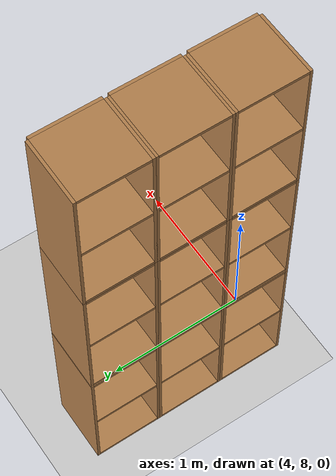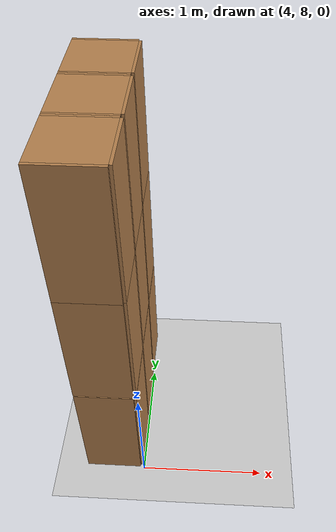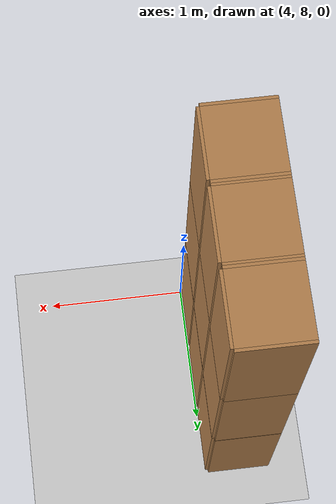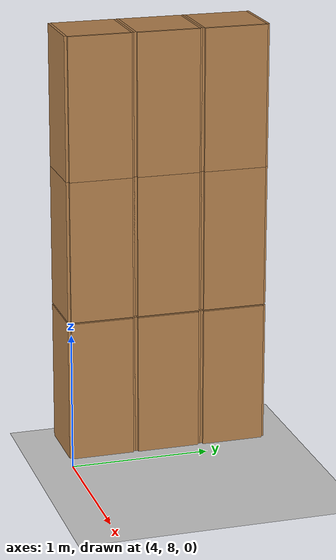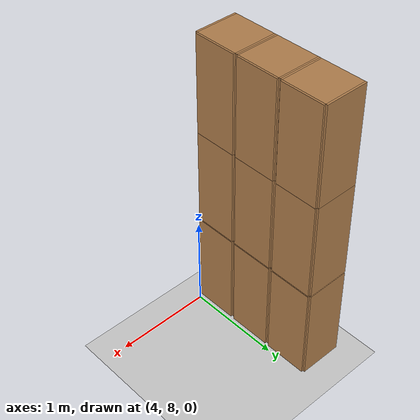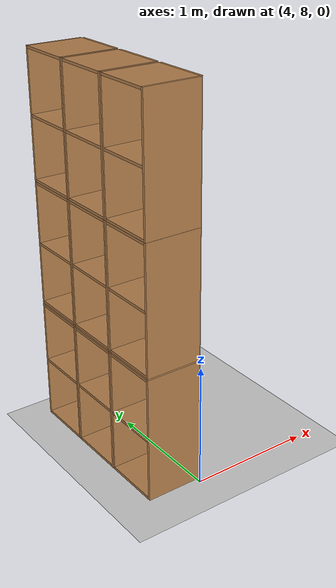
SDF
<sdf version="1.6">
 <world name="default">
  <model name="ground_plane">
   <static>1</static>
   <link name="link">
    <collision name="collision">
     <geometry><plane><normal>0 0 1</normal><size>100 100</size></plane></geometry>
     <surface>
      <contact><collide_bitmask>65535</collide_bitmask></contact>
      <friction><ode><mu>100</mu><mu2>50</mu2></ode></friction>
     </surface>
    </collision>
    <visual name="visual">
     <cast_shadows>0</cast_shadows>
     <geometry><plane><normal>0 0 1</normal><size>100 100</size></plane></geometry>
     <material>
      <script><uri>file://media/materials/scripts/gazebo.material</uri><name>Gazebo/Grey</name></script>
     </material>
    </visual>
   </link>
  </model>
  <model name="Locker18_clone_4">
   <model name="Locker18">
    <model name="Locker3">
     <model name="cabinet">
      <static>1</static>
      <link name="cabinet_bottom_plate">
       <inertial>
        <pose>0 0 -1 0 -0 0</pose>
        <inertia><ixx>2.05</ixx><ixy>0</ixy><ixz>0</ixz><iyy>2.05</iyy><iyz>0</iyz><izz>2.05</izz></inertia>
        <mass>25</mass>
       </inertial>
       <collision name="cabinet_bottom_plate_geom">
        <pose>0 0 0.01 0 -0 0</pose>
        <geometry><box><size>0.45 0.45 0.02</size></box></geometry>
       </collision>
       <visual name="cabinet_bottom_plate_geom_visual">
        <pose>0 0 0.01 0 -0 0</pose>
        <geometry><box><size>0.45 0.45 0.02</size></box></geometry>
        <material>
         <script><uri>file://media/materials/scripts/gazebo.material</uri><name>Gazebo/Wood</name></script>
        </material>
       </visual>
       <collision name="cabinet_bottom_plate_geom_cabinet_back_plate">
        <pose>0.235 0 0.51 0 -0 0</pose>
        <geometry><box><size>0.02 0.45 1.02</size></box></geometry>
       </collision>
       <visual name="cabinet_bottom_plate_geom_cabinet_back_plate_visual">
        <pose>0.235 0 0.51 0 -0 0</pose>
        <geometry><box><size>0.02 0.45 1.02</size></box></geometry>
        <material>
         <script><uri>file://media/materials/scripts/gazebo.material</uri><name>Gazebo/Wood</name></script>
        </material>
       </visual>
       <collision name="cabinet_bottom_plate_geom_cabinet_left_plate">
        <pose>0 0.235 0.51 0 -0 0</pose>
        <geometry><box><size>0.45 0.02 1.02</size></box></geometry>
       </collision>
       <visual name="cabinet_bottom_plate_geom_cabinet_left_plate_visual">
        <pose>0 0.235 0.51 0 -0 0</pose>
        <geometry><box><size>0.45 0.02 1.02</size></box></geometry>
        <material>
         <script><uri>file://media/materials/scripts/gazebo.material</uri><name>Gazebo/Wood</name></script>
        </material>
       </visual>
       <collision name="cabinet_bottom_plate_geom_cabinet_middle_plate">
        <pose>0 0 0.51 0 -0 0</pose>
        <geometry><box><size>0.45 0.45 0.02</size></box></geometry>
       </collision>
       <visual name="cabinet_bottom_plate_geom_cabinet_middle_plate_visual">
        <pose>0 0 0.51 0 -0 0</pose>
        <geometry><box><size>0.45 0.45 0.02</size></box></geometry>
        <material>
         <script><uri>file://media/materials/scripts/gazebo.material</uri><name>Gazebo/Wood</name></script>
        </material>
       </visual>
       <collision name="cabinet_bottom_plate_geom_cabinet_right_plate">
        <pose>0 -0.235 0.51 0 -0 0</pose>
        <geometry><box><size>0.45 0.02 1.02</size></box></geometry>
       </collision>
       <visual name="cabinet_bottom_plate_geom_cabinet_right_plate_visual">
        <pose>0 -0.235 0.51 0 -0 0</pose>
        <geometry><box><size>0.45 0.02 1.02</size></box></geometry>
        <material>
         <script><uri>file://media/materials/scripts/gazebo.material</uri><name>Gazebo/Wood</name></script>
        </material>
       </visual>
       <collision name="cabinet_bottom_plate_geom_cabinet_top_plate">
        <pose>0 0 1.01 0 -0 0</pose>
        <geometry><box><size>0.45 0.45 0.02</size></box></geometry>
       </collision>
       <visual name="cabinet_bottom_plate_geom_cabinet_top_plate_visual">
        <pose>0 0 1.01 0 -0 0</pose>
        <geometry><box><size>0.45 0.45 0.02</size></box></geometry>
        <material>
         <script><uri>file://media/materials/scripts/gazebo.material</uri><name>Gazebo/Wood</name></script>
        </material>
       </visual>
      </link>
      <pose>-0.676968 1.45758 0 0 -0 0</pose>
     </model>
     <model name="cabinet_clone">
      <static>1</static>
      <link name="cabinet_bottom_plate">
       <inertial>
        <pose>0 0 -1 0 -0 0</pose>
        <inertia><ixx>2.05</ixx><ixy>0</ixy><ixz>0</ixz><iyy>2.05</iyy><iyz>0</iyz><izz>2.05</izz></inertia>
        <mass>25</mass>
       </inertial>
       <collision name="cabinet_bottom_plate_geom">
        <pose>0 0 0.01 0 -0 0</pose>
        <geometry><box><size>0.45 0.45 0.02</size></box></geometry>
       </collision>
       <visual name="cabinet_bottom_plate_geom_visual">
        <pose>0 0 0.01 0 -0 0</pose>
        <geometry><box><size>0.45 0.45 0.02</size></box></geometry>
        <material>
         <script><uri>file://media/materials/scripts/gazebo.material</uri><name>Gazebo/Wood</name></script>
        </material>
       </visual>
       <collision name="cabinet_bottom_plate_geom_cabinet_back_plate">
        <pose>0.235 0 0.51 0 -0 0</pose>
        <geometry><box><size>0.02 0.45 1.02</size></box></geometry>
       </collision>
       <visual name="cabinet_bottom_plate_geom_cabinet_back_plate_visual">
        <pose>0.235 0 0.51 0 -0 0</pose>
        <geometry><box><size>0.02 0.45 1.02</size></box></geometry>
        <material>
         <script><uri>file://media/materials/scripts/gazebo.material</uri><name>Gazebo/Wood</name></script>
        </material>
       </visual>
       <collision name="cabinet_bottom_plate_geom_cabinet_left_plate">
        <pose>0 0.235 0.51 0 -0 0</pose>
        <geometry><box><size>0.45 0.02 1.02</size></box></geometry>
       </collision>
       <visual name="cabinet_bottom_plate_geom_cabinet_left_plate_visual">
        <pose>0 0.235 0.51 0 -0 0</pose>
        <geometry><box><size>0.45 0.02 1.02</size></box></geometry>
        <material>
         <script><uri>file://media/materials/scripts/gazebo.material</uri><name>Gazebo/Wood</name></script>
        </material>
       </visual>
       <collision name="cabinet_bottom_plate_geom_cabinet_middle_plate">
        <pose>0 0 0.51 0 -0 0</pose>
        <geometry><box><size>0.45 0.45 0.02</size></box></geometry>
       </collision>
       <visual name="cabinet_bottom_plate_geom_cabinet_middle_plate_visual">
        <pose>0 0 0.51 0 -0 0</pose>
        <geometry><box><size>0.45 0.45 0.02</size></box></geometry>
        <material>
         <script><uri>file://media/materials/scripts/gazebo.material</uri><name>Gazebo/Wood</name></script>
        </material>
       </visual>
       <collision name="cabinet_bottom_plate_geom_cabinet_right_plate">
        <pose>0 -0.235 0.51 0 -0 0</pose>
        <geometry><box><size>0.45 0.02 1.02</size></box></geometry>
       </collision>
       <visual name="cabinet_bottom_plate_geom_cabinet_right_plate_visual">
        <pose>0 -0.235 0.51 0 -0 0</pose>
        <geometry><box><size>0.45 0.02 1.02</size></box></geometry>
        <material>
         <script><uri>file://media/materials/scripts/gazebo.material</uri><name>Gazebo/Wood</name></script>
        </material>
       </visual>
       <collision name="cabinet_bottom_plate_geom_cabinet_top_plate">
        <pose>0 0 1.01 0 -0 0</pose>
        <geometry><box><size>0.45 0.45 0.02</size></box></geometry>
       </collision>
       <visual name="cabinet_bottom_plate_geom_cabinet_top_plate_visual">
        <pose>0 0 1.01 0 -0 0</pose>
        <geometry><box><size>0.45 0.45 0.02</size></box></geometry>
        <material>
         <script><uri>file://media/materials/scripts/gazebo.material</uri><name>Gazebo/Wood</name></script>
        </material>
       </visual>
      </link>
      <pose>-0.676968 0.970971 0 0 -0 0</pose>
     </model>
     <model name="cabinet_clone_0">
      <static>1</static>
      <link name="cabinet_bottom_plate">
       <inertial>
        <pose>0 0 -1 0 -0 0</pose>
        <inertia><ixx>2.05</ixx><ixy>0</ixy><ixz>0</ixz><iyy>2.05</iyy><iyz>0</iyz><izz>2.05</izz></inertia>
        <mass>25</mass>
       </inertial>
       <collision name="cabinet_bottom_plate_geom">
        <pose>0 0 0.01 0 -0 0</pose>
        <geometry><box><size>0.45 0.45 0.02</size></box></geometry>
       </collision>
       <visual name="cabinet_bottom_plate_geom_visual">
        <pose>0 0 0.01 0 -0 0</pose>
        <geometry><box><size>0.45 0.45 0.02</size></box></geometry>
        <material>
         <script><uri>file://media/materials/scripts/gazebo.material</uri><name>Gazebo/Wood</name></script>
        </material>
       </visual>
       <collision name="cabinet_bottom_plate_geom_cabinet_back_plate">
        <pose>0.235 0 0.51 0 -0 0</pose>
        <geometry><box><size>0.02 0.45 1.02</size></box></geometry>
       </collision>
       <visual name="cabinet_bottom_plate_geom_cabinet_back_plate_visual">
        <pose>0.235 0 0.51 0 -0 0</pose>
        <geometry><box><size>0.02 0.45 1.02</size></box></geometry>
        <material>
         <script><uri>file://media/materials/scripts/gazebo.material</uri><name>Gazebo/Wood</name></script>
        </material>
       </visual>
       <collision name="cabinet_bottom_plate_geom_cabinet_left_plate">
        <pose>0 0.235 0.51 0 -0 0</pose>
        <geometry><box><size>0.45 0.02 1.02</size></box></geometry>
       </collision>
       <visual name="cabinet_bottom_plate_geom_cabinet_left_plate_visual">
        <pose>0 0.235 0.51 0 -0 0</pose>
        <geometry><box><size>0.45 0.02 1.02</size></box></geometry>
        <material>
         <script><uri>file://media/materials/scripts/gazebo.material</uri><name>Gazebo/Wood</name></script>
        </material>
       </visual>
       <collision name="cabinet_bottom_plate_geom_cabinet_middle_plate">
        <pose>0 0 0.51 0 -0 0</pose>
        <geometry><box><size>0.45 0.45 0.02</size></box></geometry>
       </collision>
       <visual name="cabinet_bottom_plate_geom_cabinet_middle_plate_visual">
        <pose>0 0 0.51 0 -0 0</pose>
        <geometry><box><size>0.45 0.45 0.02</size></box></geometry>
        <material>
         <script><uri>file://media/materials/scripts/gazebo.material</uri><name>Gazebo/Wood</name></script>
        </material>
       </visual>
       <collision name="cabinet_bottom_plate_geom_cabinet_right_plate">
        <pose>0 -0.235 0.51 0 -0 0</pose>
        <geometry><box><size>0.45 0.02 1.02</size></box></geometry>
       </collision>
       <visual name="cabinet_bottom_plate_geom_cabinet_right_plate_visual">
        <pose>0 -0.235 0.51 0 -0 0</pose>
        <geometry><box><size>0.45 0.02 1.02</size></box></geometry>
        <material>
         <script><uri>file://media/materials/scripts/gazebo.material</uri><name>Gazebo/Wood</name></script>
        </material>
       </visual>
       <collision name="cabinet_bottom_plate_geom_cabinet_top_plate">
        <pose>0 0 1.01 0 -0 0</pose>
        <geometry><box><size>0.45 0.45 0.02</size></box></geometry>
       </collision>
       <visual name="cabinet_bottom_plate_geom_cabinet_top_plate_visual">
        <pose>0 0 1.01 0 -0 0</pose>
        <geometry><box><size>0.45 0.45 0.02</size></box></geometry>
        <material>
         <script><uri>file://media/materials/scripts/gazebo.material</uri><name>Gazebo/Wood</name></script>
        </material>
       </visual>
      </link>
      <pose>-0.676968 0.48391 0 0 -0 0</pose>
     </model>
     <static>0</static>
     <pose>0 3e-06 -1.02763 0 -0 0</pose>
    </model>
    <model name="Locker3_clone">
     <model name="cabinet">
      <static>1</static>
      <link name="cabinet_bottom_plate">
       <inertial>
        <pose>0 0 -1 0 -0 0</pose>
        <inertia><ixx>2.05</ixx><ixy>0</ixy><ixz>0</ixz><iyy>2.05</iyy><iyz>0</iyz><izz>2.05</izz></inertia>
        <mass>25</mass>
       </inertial>
       <collision name="cabinet_bottom_plate_geom">
        <pose>0 0 0.01 0 -0 0</pose>
        <geometry><box><size>0.45 0.45 0.02</size></box></geometry>
       </collision>
       <visual name="cabinet_bottom_plate_geom_visual">
        <pose>0 0 0.01 0 -0 0</pose>
        <geometry><box><size>0.45 0.45 0.02</size></box></geometry>
        <material>
         <script><uri>file://media/materials/scripts/gazebo.material</uri><name>Gazebo/Wood</name></script>
        </material>
       </visual>
       <collision name="cabinet_bottom_plate_geom_cabinet_back_plate">
        <pose>0.235 0 0.51 0 -0 0</pose>
        <geometry><box><size>0.02 0.45 1.02</size></box></geometry>
       </collision>
       <visual name="cabinet_bottom_plate_geom_cabinet_back_plate_visual">
        <pose>0.235 0 0.51 0 -0 0</pose>
        <geometry><box><size>0.02 0.45 1.02</size></box></geometry>
        <material>
         <script><uri>file://media/materials/scripts/gazebo.material</uri><name>Gazebo/Wood</name></script>
        </material>
       </visual>
       <collision name="cabinet_bottom_plate_geom_cabinet_left_plate">
        <pose>0 0.235 0.51 0 -0 0</pose>
        <geometry><box><size>0.45 0.02 1.02</size></box></geometry>
       </collision>
       <visual name="cabinet_bottom_plate_geom_cabinet_left_plate_visual">
        <pose>0 0.235 0.51 0 -0 0</pose>
        <geometry><box><size>0.45 0.02 1.02</size></box></geometry>
        <material>
         <script><uri>file://media/materials/scripts/gazebo.material</uri><name>Gazebo/Wood</name></script>
        </material>
       </visual>
       <collision name="cabinet_bottom_plate_geom_cabinet_middle_plate">
        <pose>0 0 0.51 0 -0 0</pose>
        <geometry><box><size>0.45 0.45 0.02</size></box></geometry>
       </collision>
       <visual name="cabinet_bottom_plate_geom_cabinet_middle_plate_visual">
        <pose>0 0 0.51 0 -0 0</pose>
        <geometry><box><size>0.45 0.45 0.02</size></box></geometry>
        <material>
         <script><uri>file://media/materials/scripts/gazebo.material</uri><name>Gazebo/Wood</name></script>
        </material>
       </visual>
       <collision name="cabinet_bottom_plate_geom_cabinet_right_plate">
        <pose>0 -0.235 0.51 0 -0 0</pose>
        <geometry><box><size>0.45 0.02 1.02</size></box></geometry>
       </collision>
       <visual name="cabinet_bottom_plate_geom_cabinet_right_plate_visual">
        <pose>0 -0.235 0.51 0 -0 0</pose>
        <geometry><box><size>0.45 0.02 1.02</size></box></geometry>
        <material>
         <script><uri>file://media/materials/scripts/gazebo.material</uri><name>Gazebo/Wood</name></script>
        </material>
       </visual>
       <collision name="cabinet_bottom_plate_geom_cabinet_top_plate">
        <pose>0 0 1.01 0 -0 0</pose>
        <geometry><box><size>0.45 0.45 0.02</size></box></geometry>
       </collision>
       <visual name="cabinet_bottom_plate_geom_cabinet_top_plate_visual">
        <pose>0 0 1.01 0 -0 0</pose>
        <geometry><box><size>0.45 0.45 0.02</size></box></geometry>
        <material>
         <script><uri>file://media/materials/scripts/gazebo.material</uri><name>Gazebo/Wood</name></script>
        </material>
       </visual>
      </link>
      <pose>-0.676968 1.45758 0 0 -0 0</pose>
     </model>
     <model name="cabinet_clone">
      <static>1</static>
      <link name="cabinet_bottom_plate">
       <inertial>
        <pose>0 0 -1 0 -0 0</pose>
        <inertia><ixx>2.05</ixx><ixy>0</ixy><ixz>0</ixz><iyy>2.05</iyy><iyz>0</iyz><izz>2.05</izz></inertia>
        <mass>25</mass>
       </inertial>
       <collision name="cabinet_bottom_plate_geom">
        <pose>0 0 0.01 0 -0 0</pose>
        <geometry><box><size>0.45 0.45 0.02</size></box></geometry>
       </collision>
       <visual name="cabinet_bottom_plate_geom_visual">
        <pose>0 0 0.01 0 -0 0</pose>
        <geometry><box><size>0.45 0.45 0.02</size></box></geometry>
        <material>
         <script><uri>file://media/materials/scripts/gazebo.material</uri><name>Gazebo/Wood</name></script>
        </material>
       </visual>
       <collision name="cabinet_bottom_plate_geom_cabinet_back_plate">
        <pose>0.235 0 0.51 0 -0 0</pose>
        <geometry><box><size>0.02 0.45 1.02</size></box></geometry>
       </collision>
       <visual name="cabinet_bottom_plate_geom_cabinet_back_plate_visual">
        <pose>0.235 0 0.51 0 -0 0</pose>
        <geometry><box><size>0.02 0.45 1.02</size></box></geometry>
        <material>
         <script><uri>file://media/materials/scripts/gazebo.material</uri><name>Gazebo/Wood</name></script>
        </material>
       </visual>
       <collision name="cabinet_bottom_plate_geom_cabinet_left_plate">
        <pose>0 0.235 0.51 0 -0 0</pose>
        <geometry><box><size>0.45 0.02 1.02</size></box></geometry>
       </collision>
       <visual name="cabinet_bottom_plate_geom_cabinet_left_plate_visual">
        <pose>0 0.235 0.51 0 -0 0</pose>
        <geometry><box><size>0.45 0.02 1.02</size></box></geometry>
        <material>
         <script><uri>file://media/materials/scripts/gazebo.material</uri><name>Gazebo/Wood</name></script>
        </material>
       </visual>
       <collision name="cabinet_bottom_plate_geom_cabinet_middle_plate">
        <pose>0 0 0.51 0 -0 0</pose>
        <geometry><box><size>0.45 0.45 0.02</size></box></geometry>
       </collision>
       <visual name="cabinet_bottom_plate_geom_cabinet_middle_plate_visual">
        <pose>0 0 0.51 0 -0 0</pose>
        <geometry><box><size>0.45 0.45 0.02</size></box></geometry>
        <material>
         <script><uri>file://media/materials/scripts/gazebo.material</uri><name>Gazebo/Wood</name></script>
        </material>
       </visual>
       <collision name="cabinet_bottom_plate_geom_cabinet_right_plate">
        <pose>0 -0.235 0.51 0 -0 0</pose>
        <geometry><box><size>0.45 0.02 1.02</size></box></geometry>
       </collision>
       <visual name="cabinet_bottom_plate_geom_cabinet_right_plate_visual">
        <pose>0 -0.235 0.51 0 -0 0</pose>
        <geometry><box><size>0.45 0.02 1.02</size></box></geometry>
        <material>
         <script><uri>file://media/materials/scripts/gazebo.material</uri><name>Gazebo/Wood</name></script>
        </material>
       </visual>
       <collision name="cabinet_bottom_plate_geom_cabinet_top_plate">
        <pose>0 0 1.01 0 -0 0</pose>
        <geometry><box><size>0.45 0.45 0.02</size></box></geometry>
       </collision>
       <visual name="cabinet_bottom_plate_geom_cabinet_top_plate_visual">
        <pose>0 0 1.01 0 -0 0</pose>
        <geometry><box><size>0.45 0.45 0.02</size></box></geometry>
        <material>
         <script><uri>file://media/materials/scripts/gazebo.material</uri><name>Gazebo/Wood</name></script>
        </material>
       </visual>
      </link>
      <pose>-0.676968 0.970971 0 0 -0 0</pose>
     </model>
     <model name="cabinet_clone_0">
      <static>1</static>
      <link name="cabinet_bottom_plate">
       <inertial>
        <pose>0 0 -1 0 -0 0</pose>
        <inertia><ixx>2.05</ixx><ixy>0</ixy><ixz>0</ixz><iyy>2.05</iyy><iyz>0</iyz><izz>2.05</izz></inertia>
        <mass>25</mass>
       </inertial>
       <collision name="cabinet_bottom_plate_geom">
        <pose>0 0 0.01 0 -0 0</pose>
        <geometry><box><size>0.45 0.45 0.02</size></box></geometry>
       </collision>
       <visual name="cabinet_bottom_plate_geom_visual">
        <pose>0 0 0.01 0 -0 0</pose>
        <geometry><box><size>0.45 0.45 0.02</size></box></geometry>
        <material>
         <script><uri>file://media/materials/scripts/gazebo.material</uri><name>Gazebo/Wood</name></script>
        </material>
       </visual>
       <collision name="cabinet_bottom_plate_geom_cabinet_back_plate">
        <pose>0.235 0 0.51 0 -0 0</pose>
        <geometry><box><size>0.02 0.45 1.02</size></box></geometry>
       </collision>
       <visual name="cabinet_bottom_plate_geom_cabinet_back_plate_visual">
        <pose>0.235 0 0.51 0 -0 0</pose>
        <geometry><box><size>0.02 0.45 1.02</size></box></geometry>
        <material>
         <script><uri>file://media/materials/scripts/gazebo.material</uri><name>Gazebo/Wood</name></script>
        </material>
       </visual>
       <collision name="cabinet_bottom_plate_geom_cabinet_left_plate">
        <pose>0 0.235 0.51 0 -0 0</pose>
        <geometry><box><size>0.45 0.02 1.02</size></box></geometry>
       </collision>
       <visual name="cabinet_bottom_plate_geom_cabinet_left_plate_visual">
        <pose>0 0.235 0.51 0 -0 0</pose>
        <geometry><box><size>0.45 0.02 1.02</size></box></geometry>
        <material>
         <script><uri>file://media/materials/scripts/gazebo.material</uri><name>Gazebo/Wood</name></script>
        </material>
       </visual>
       <collision name="cabinet_bottom_plate_geom_cabinet_middle_plate">
        <pose>0 0 0.51 0 -0 0</pose>
        <geometry><box><size>0.45 0.45 0.02</size></box></geometry>
       </collision>
       <visual name="cabinet_bottom_plate_geom_cabinet_middle_plate_visual">
        <pose>0 0 0.51 0 -0 0</pose>
        <geometry><box><size>0.45 0.45 0.02</size></box></geometry>
        <material>
         <script><uri>file://media/materials/scripts/gazebo.material</uri><name>Gazebo/Wood</name></script>
        </material>
       </visual>
       <collision name="cabinet_bottom_plate_geom_cabinet_right_plate">
        <pose>0 -0.235 0.51 0 -0 0</pose>
        <geometry><box><size>0.45 0.02 1.02</size></box></geometry>
       </collision>
       <visual name="cabinet_bottom_plate_geom_cabinet_right_plate_visual">
        <pose>0 -0.235 0.51 0 -0 0</pose>
        <geometry><box><size>0.45 0.02 1.02</size></box></geometry>
        <material>
         <script><uri>file://media/materials/scripts/gazebo.material</uri><name>Gazebo/Wood</name></script>
        </material>
       </visual>
       <collision name="cabinet_bottom_plate_geom_cabinet_top_plate">
        <pose>0 0 1.01 0 -0 0</pose>
        <geometry><box><size>0.45 0.45 0.02</size></box></geometry>
       </collision>
       <visual name="cabinet_bottom_plate_geom_cabinet_top_plate_visual">
        <pose>0 0 1.01 0 -0 0</pose>
        <geometry><box><size>0.45 0.45 0.02</size></box></geometry>
        <material>
         <script><uri>file://media/materials/scripts/gazebo.material</uri><name>Gazebo/Wood</name></script>
        </material>
       </visual>
      </link>
      <pose>-0.676968 0.48391 0 0 -0 0</pose>
     </model>
     <static>0</static>
     <pose>0 3e-06 0.003717 0 -0 0</pose>
    </model>
    <model name="Locker3_clone_clone">
     <model name="cabinet">
      <static>1</static>
      <link name="cabinet_bottom_plate">
       <inertial>
        <pose>0 0 -1 0 -0 0</pose>
        <inertia><ixx>2.05</ixx><ixy>0</ixy><ixz>0</ixz><iyy>2.05</iyy><iyz>0</iyz><izz>2.05</izz></inertia>
        <mass>25</mass>
       </inertial>
       <collision name="cabinet_bottom_plate_geom">
        <pose>0 0 0.01 0 -0 0</pose>
        <geometry><box><size>0.45 0.45 0.02</size></box></geometry>
       </collision>
       <visual name="cabinet_bottom_plate_geom_visual">
        <pose>0 0 0.01 0 -0 0</pose>
        <geometry><box><size>0.45 0.45 0.02</size></box></geometry>
        <material>
         <script><uri>file://media/materials/scripts/gazebo.material</uri><name>Gazebo/Wood</name></script>
        </material>
       </visual>
       <collision name="cabinet_bottom_plate_geom_cabinet_back_plate">
        <pose>0.235 0 0.51 0 -0 0</pose>
        <geometry><box><size>0.02 0.45 1.02</size></box></geometry>
       </collision>
       <visual name="cabinet_bottom_plate_geom_cabinet_back_plate_visual">
        <pose>0.235 0 0.51 0 -0 0</pose>
        <geometry><box><size>0.02 0.45 1.02</size></box></geometry>
        <material>
         <script><uri>file://media/materials/scripts/gazebo.material</uri><name>Gazebo/Wood</name></script>
        </material>
       </visual>
       <collision name="cabinet_bottom_plate_geom_cabinet_left_plate">
        <pose>0 0.235 0.51 0 -0 0</pose>
        <geometry><box><size>0.45 0.02 1.02</size></box></geometry>
       </collision>
       <visual name="cabinet_bottom_plate_geom_cabinet_left_plate_visual">
        <pose>0 0.235 0.51 0 -0 0</pose>
        <geometry><box><size>0.45 0.02 1.02</size></box></geometry>
        <material>
         <script><uri>file://media/materials/scripts/gazebo.material</uri><name>Gazebo/Wood</name></script>
        </material>
       </visual>
       <collision name="cabinet_bottom_plate_geom_cabinet_middle_plate">
        <pose>0 0 0.51 0 -0 0</pose>
        <geometry><box><size>0.45 0.45 0.02</size></box></geometry>
       </collision>
       <visual name="cabinet_bottom_plate_geom_cabinet_middle_plate_visual">
        <pose>0 0 0.51 0 -0 0</pose>
        <geometry><box><size>0.45 0.45 0.02</size></box></geometry>
        <material>
         <script><uri>file://media/materials/scripts/gazebo.material</uri><name>Gazebo/Wood</name></script>
        </material>
       </visual>
       <collision name="cabinet_bottom_plate_geom_cabinet_right_plate">
        <pose>0 -0.235 0.51 0 -0 0</pose>
        <geometry><box><size>0.45 0.02 1.02</size></box></geometry>
       </collision>
       <visual name="cabinet_bottom_plate_geom_cabinet_right_plate_visual">
        <pose>0 -0.235 0.51 0 -0 0</pose>
        <geometry><box><size>0.45 0.02 1.02</size></box></geometry>
        <material>
         <script><uri>file://media/materials/scripts/gazebo.material</uri><name>Gazebo/Wood</name></script>
        </material>
       </visual>
       <collision name="cabinet_bottom_plate_geom_cabinet_top_plate">
        <pose>0 0 1.01 0 -0 0</pose>
        <geometry><box><size>0.45 0.45 0.02</size></box></geometry>
       </collision>
       <visual name="cabinet_bottom_plate_geom_cabinet_top_plate_visual">
        <pose>0 0 1.01 0 -0 0</pose>
        <geometry><box><size>0.45 0.45 0.02</size></box></geometry>
        <material>
         <script><uri>file://media/materials/scripts/gazebo.material</uri><name>Gazebo/Wood</name></script>
        </material>
       </visual>
      </link>
      <pose>-0.676968 1.45758 0 0 -0 0</pose>
     </model>
     <model name="cabinet_clone">
      <static>1</static>
      <link name="cabinet_bottom_plate">
       <inertial>
        <pose>0 0 -1 0 -0 0</pose>
        <inertia><ixx>2.05</ixx><ixy>0</ixy><ixz>0</ixz><iyy>2.05</iyy><iyz>0</iyz><izz>2.05</izz></inertia>
        <mass>25</mass>
       </inertial>
       <collision name="cabinet_bottom_plate_geom">
        <pose>0 0 0.01 0 -0 0</pose>
        <geometry><box><size>0.45 0.45 0.02</size></box></geometry>
       </collision>
       <visual name="cabinet_bottom_plate_geom_visual">
        <pose>0 0 0.01 0 -0 0</pose>
        <geometry><box><size>0.45 0.45 0.02</size></box></geometry>
        <material>
         <script><uri>file://media/materials/scripts/gazebo.material</uri><name>Gazebo/Wood</name></script>
        </material>
       </visual>
       <collision name="cabinet_bottom_plate_geom_cabinet_back_plate">
        <pose>0.235 0 0.51 0 -0 0</pose>
        <geometry><box><size>0.02 0.45 1.02</size></box></geometry>
       </collision>
       <visual name="cabinet_bottom_plate_geom_cabinet_back_plate_visual">
        <pose>0.235 0 0.51 0 -0 0</pose>
        <geometry><box><size>0.02 0.45 1.02</size></box></geometry>
        <material>
         <script><uri>file://media/materials/scripts/gazebo.material</uri><name>Gazebo/Wood</name></script>
        </material>
       </visual>
       <collision name="cabinet_bottom_plate_geom_cabinet_left_plate">
        <pose>0 0.235 0.51 0 -0 0</pose>
        <geometry><box><size>0.45 0.02 1.02</size></box></geometry>
       </collision>
       <visual name="cabinet_bottom_plate_geom_cabinet_left_plate_visual">
        <pose>0 0.235 0.51 0 -0 0</pose>
        <geometry><box><size>0.45 0.02 1.02</size></box></geometry>
        <material>
         <script><uri>file://media/materials/scripts/gazebo.material</uri><name>Gazebo/Wood</name></script>
        </material>
       </visual>
       <collision name="cabinet_bottom_plate_geom_cabinet_middle_plate">
        <pose>0 0 0.51 0 -0 0</pose>
        <geometry><box><size>0.45 0.45 0.02</size></box></geometry>
       </collision>
       <visual name="cabinet_bottom_plate_geom_cabinet_middle_plate_visual">
        <pose>0 0 0.51 0 -0 0</pose>
        <geometry><box><size>0.45 0.45 0.02</size></box></geometry>
        <material>
         <script><uri>file://media/materials/scripts/gazebo.material</uri><name>Gazebo/Wood</name></script>
        </material>
       </visual>
       <collision name="cabinet_bottom_plate_geom_cabinet_right_plate">
        <pose>0 -0.235 0.51 0 -0 0</pose>
        <geometry><box><size>0.45 0.02 1.02</size></box></geometry>
       </collision>
       <visual name="cabinet_bottom_plate_geom_cabinet_right_plate_visual">
        <pose>0 -0.235 0.51 0 -0 0</pose>
        <geometry><box><size>0.45 0.02 1.02</size></box></geometry>
        <material>
         <script><uri>file://media/materials/scripts/gazebo.material</uri><name>Gazebo/Wood</name></script>
        </material>
       </visual>
       <collision name="cabinet_bottom_plate_geom_cabinet_top_plate">
        <pose>0 0 1.01 0 -0 0</pose>
        <geometry><box><size>0.45 0.45 0.02</size></box></geometry>
       </collision>
       <visual name="cabinet_bottom_plate_geom_cabinet_top_plate_visual">
        <pose>0 0 1.01 0 -0 0</pose>
        <geometry><box><size>0.45 0.45 0.02</size></box></geometry>
        <material>
         <script><uri>file://media/materials/scripts/gazebo.material</uri><name>Gazebo/Wood</name></script>
        </material>
       </visual>
      </link>
      <pose>-0.676968 0.970971 0 0 -0 0</pose>
     </model>
     <model name="cabinet_clone_0">
      <static>1</static>
      <link name="cabinet_bottom_plate">
       <inertial>
        <pose>0 0 -1 0 -0 0</pose>
        <inertia><ixx>2.05</ixx><ixy>0</ixy><ixz>0</ixz><iyy>2.05</iyy><iyz>0</iyz><izz>2.05</izz></inertia>
        <mass>25</mass>
       </inertial>
       <collision name="cabinet_bottom_plate_geom">
        <pose>0 0 0.01 0 -0 0</pose>
        <geometry><box><size>0.45 0.45 0.02</size></box></geometry>
       </collision>
       <visual name="cabinet_bottom_plate_geom_visual">
        <pose>0 0 0.01 0 -0 0</pose>
        <geometry><box><size>0.45 0.45 0.02</size></box></geometry>
        <material>
         <script><uri>file://media/materials/scripts/gazebo.material</uri><name>Gazebo/Wood</name></script>
        </material>
       </visual>
       <collision name="cabinet_bottom_plate_geom_cabinet_back_plate">
        <pose>0.235 0 0.51 0 -0 0</pose>
        <geometry><box><size>0.02 0.45 1.02</size></box></geometry>
       </collision>
       <visual name="cabinet_bottom_plate_geom_cabinet_back_plate_visual">
        <pose>0.235 0 0.51 0 -0 0</pose>
        <geometry><box><size>0.02 0.45 1.02</size></box></geometry>
        <material>
         <script><uri>file://media/materials/scripts/gazebo.material</uri><name>Gazebo/Wood</name></script>
        </material>
       </visual>
       <collision name="cabinet_bottom_plate_geom_cabinet_left_plate">
        <pose>0 0.235 0.51 0 -0 0</pose>
        <geometry><box><size>0.45 0.02 1.02</size></box></geometry>
       </collision>
       <visual name="cabinet_bottom_plate_geom_cabinet_left_plate_visual">
        <pose>0 0.235 0.51 0 -0 0</pose>
        <geometry><box><size>0.45 0.02 1.02</size></box></geometry>
        <material>
         <script><uri>file://media/materials/scripts/gazebo.material</uri><name>Gazebo/Wood</name></script>
        </material>
       </visual>
       <collision name="cabinet_bottom_plate_geom_cabinet_middle_plate">
        <pose>0 0 0.51 0 -0 0</pose>
        <geometry><box><size>0.45 0.45 0.02</size></box></geometry>
       </collision>
       <visual name="cabinet_bottom_plate_geom_cabinet_middle_plate_visual">
        <pose>0 0 0.51 0 -0 0</pose>
        <geometry><box><size>0.45 0.45 0.02</size></box></geometry>
        <material>
         <script><uri>file://media/materials/scripts/gazebo.material</uri><name>Gazebo/Wood</name></script>
        </material>
       </visual>
       <collision name="cabinet_bottom_plate_geom_cabinet_right_plate">
        <pose>0 -0.235 0.51 0 -0 0</pose>
        <geometry><box><size>0.45 0.02 1.02</size></box></geometry>
       </collision>
       <visual name="cabinet_bottom_plate_geom_cabinet_right_plate_visual">
        <pose>0 -0.235 0.51 0 -0 0</pose>
        <geometry><box><size>0.45 0.02 1.02</size></box></geometry>
        <material>
         <script><uri>file://media/materials/scripts/gazebo.material</uri><name>Gazebo/Wood</name></script>
        </material>
       </visual>
       <collision name="cabinet_bottom_plate_geom_cabinet_top_plate">
        <pose>0 0 1.01 0 -0 0</pose>
        <geometry><box><size>0.45 0.45 0.02</size></box></geometry>
       </collision>
       <visual name="cabinet_bottom_plate_geom_cabinet_top_plate_visual">
        <pose>0 0 1.01 0 -0 0</pose>
        <geometry><box><size>0.45 0.45 0.02</size></box></geometry>
        <material>
         <script><uri>file://media/materials/scripts/gazebo.material</uri><name>Gazebo/Wood</name></script>
        </material>
       </visual>
      </link>
      <pose>-0.676968 0.48391 0 0 -0 0</pose>
     </model>
     <static>0</static>
     <pose>0 3e-06 1.02391 0 -0 0</pose>
    </model>
    <static>0</static>
    <pose>-0 4e-06 4e-06 0 -0 0</pose>
   </model>
   <static>0</static>
   <pose>4.42561 7.74323 1.08672 0 -0 0</pose>
  </model>
 </world>
</sdf>
